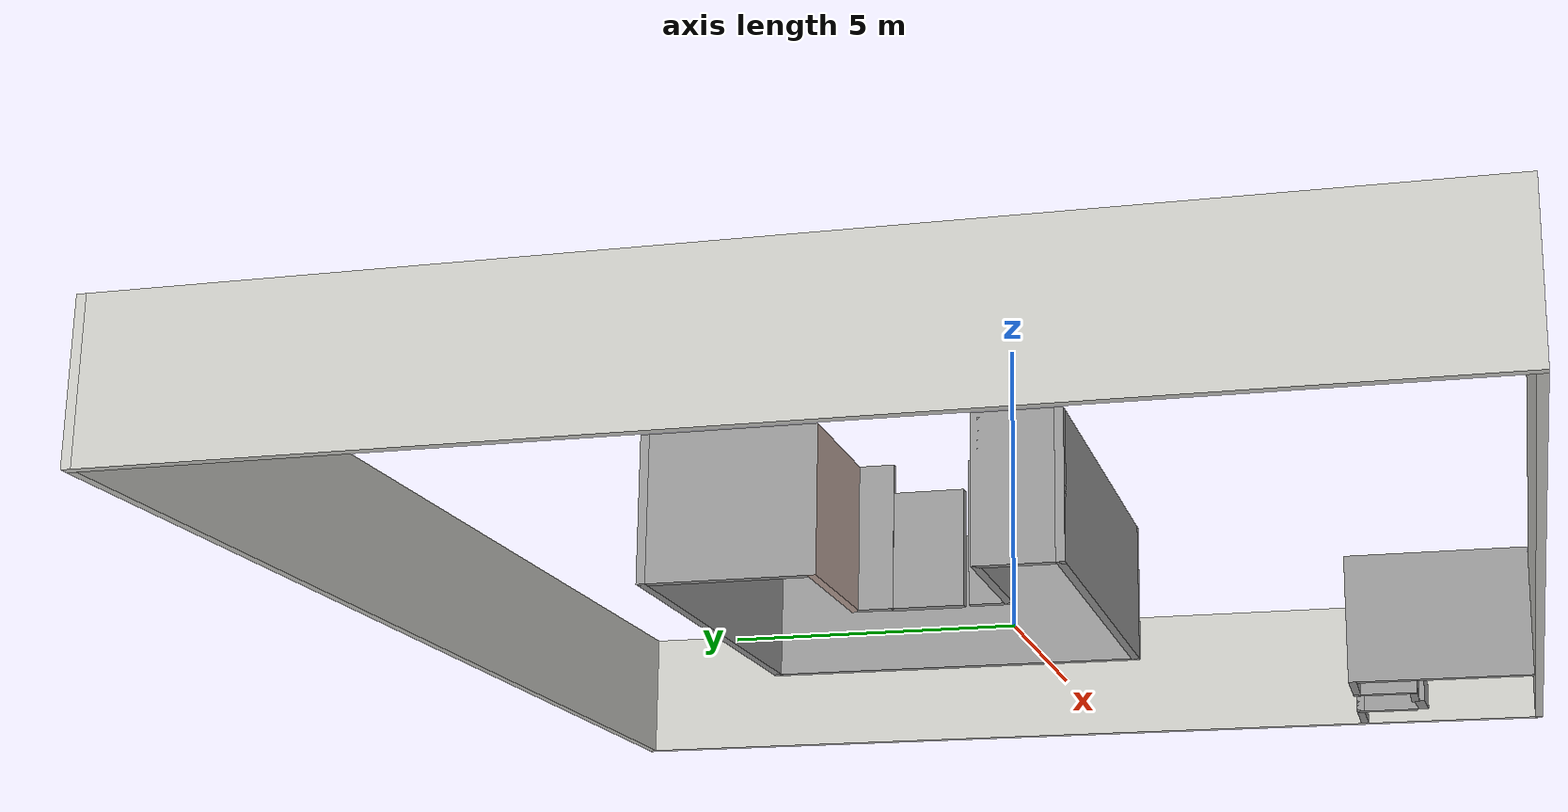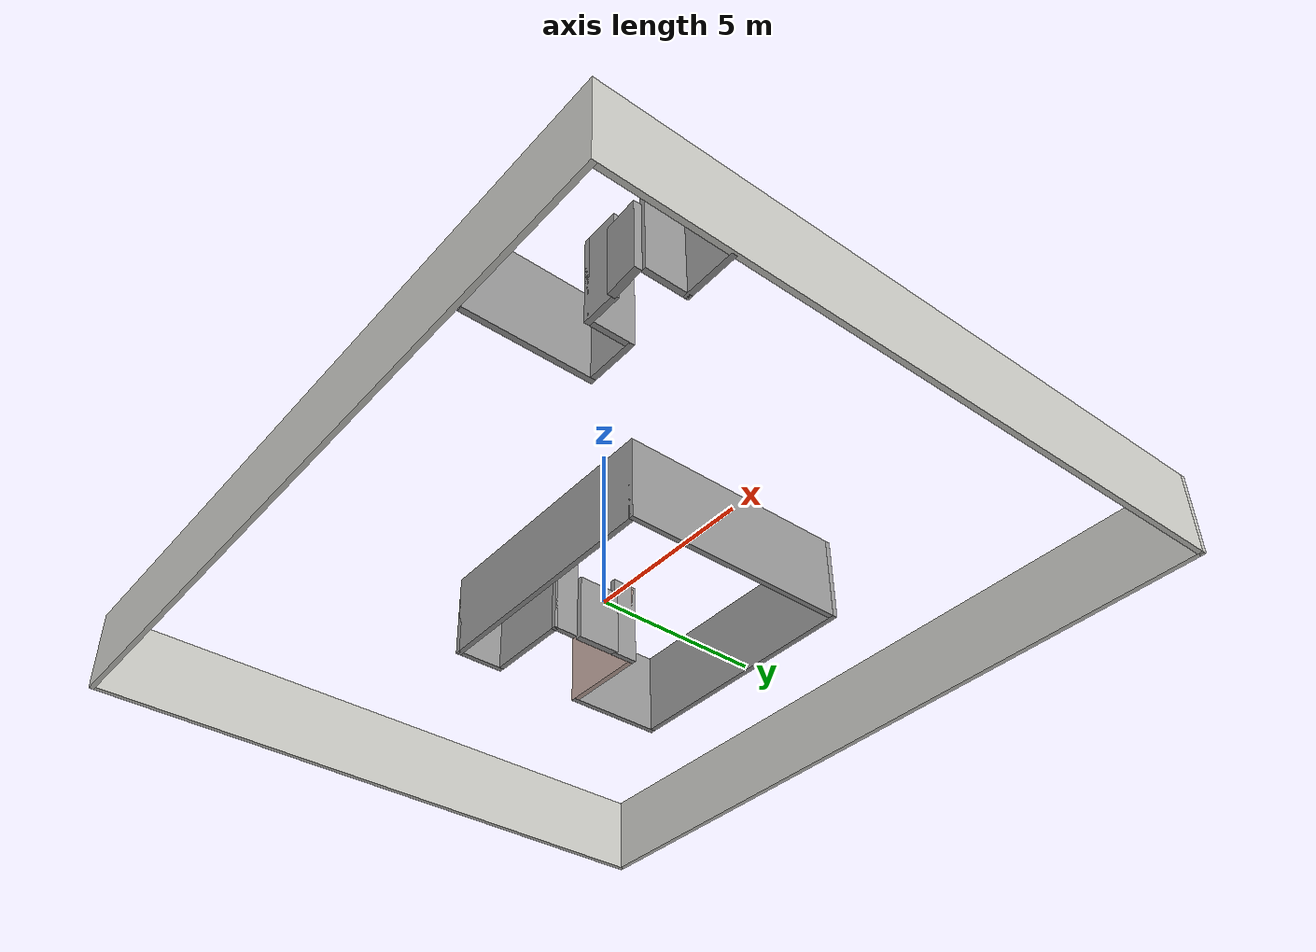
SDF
<?xml version='1.0'?>
<sdf version='1.6'>
  <model name='building'>
    <pose frame=''>-0.722 0.806 0 0 -0 0</pose>
    <link name='Door_0'>
      <collision name='Door_0_Collision'>
        <geometry>
          <box>
            <size>1.28749 0.2 2</size>
          </box>
        </geometry>
        <pose frame=''>0 0 1 0 -0 0</pose>
      </collision>
      <visual name='Door_0_Visual'>
        <pose frame=''>0 0 1 0 -0 0</pose>
        <geometry>
          <box>
            <size>1.28749 0.2 2</size>
          </box>
        </geometry>
        <material>
          <script>
            <uri>file://media/materials/scripts/gazebo.material</uri>
            <name>Gazebo/Grey</name>
          </script>
        </material>
      </visual>
      <pose frame=''>-1.03517 0.324293 0 0 0 -1.57581</pose>
    </link>
    <link name='Door_1'>
      <collision name='Door_1_Collision'>
        <geometry>
          <box>
            <size>0.932677 0.2 2</size>
          </box>
        </geometry>
        <pose frame=''>0 0 1 0 -0 0</pose>
      </collision>
      <visual name='Door_1_Visual'>
        <pose frame=''>0 0 1 0 -0 0</pose>
        <geometry>
          <box>
            <size>0.932677 0.2 2</size>
          </box>
        </geometry>
        <material>
          <script>
            <uri>file://media/materials/scripts/gazebo.material</uri>
            <name>Gazebo/Grey</name>
          </script>
        </material>
      </visual>
      <pose frame=''>9.75351 -7.35998 0 0 0 -0.048775</pose>
    </link>
    <link name='Wall_11'>
      <collision name='Wall_11_Collision'>
        <geometry>
          <box>
            <size>7.75 0.15 2.5</size>
          </box>
        </geometry>
        <pose frame=''>0 0 1.25 0 -0 0</pose>
      </collision>
      <visual name='Wall_11_Visual'>
        <pose frame=''>0 0 1.25 0 -0 0</pose>
        <geometry>
          <box>
            <size>7.75 0.15 2.5</size>
          </box>
        </geometry>
        <material>
          <script>
            <uri>file://media/materials/scripts/gazebo.material</uri>
            <name>Gazebo/Grey</name>
          </script>
          <ambient>1 1 1 1</ambient>
        </material>
        <meta>
          <layer>0</layer>
        </meta>
      </visual>
      <pose frame=''>0.135 -2.427 0 0 -0 0</pose>
    </link>
    <link name='Wall_12'>
      <collision name='Wall_12_Collision'>
        <geometry>
          <box>
            <size>7 0.15 2.5</size>
          </box>
        </geometry>
        <pose frame=''>0 0 1.25 0 -0 0</pose>
      </collision>
      <visual name='Wall_12_Visual'>
        <pose frame=''>0 0 1.25 0 -0 0</pose>
        <geometry>
          <box>
            <size>7 0.15 2.5</size>
          </box>
        </geometry>
        <material>
          <script>
            <uri>file://media/materials/scripts/gazebo.material</uri>
            <name>Gazebo/Grey</name>
          </script>
          <ambient>1 1 1 1</ambient>
        </material>
        <meta>
          <layer>0</layer>
        </meta>
      </visual>
      <pose frame=''>3.935 0.998 0 0 -0 1.5708</pose>
    </link>
    <link name='Wall_13'>
      <collision name='Wall_13_Collision'>
        <geometry>
          <box>
            <size>7.75 0.15 2.5</size>
          </box>
        </geometry>
        <pose frame=''>0 0 1.25 0 -0 0</pose>
      </collision>
      <visual name='Wall_13_Visual'>
        <pose frame=''>0 0 1.25 0 -0 0</pose>
        <geometry>
          <box>
            <size>7.75 0.15 2.5</size>
          </box>
        </geometry>
        <material>
          <script>
            <uri>file://media/materials/scripts/gazebo.material</uri>
            <name>Gazebo/Grey</name>
          </script>
          <ambient>1 1 1 1</ambient>
        </material>
        <meta>
          <layer>0</layer>
        </meta>
      </visual>
      <pose frame=''>0.135 4.423 0 0 -0 3.14159</pose>
    </link>
    <link name='Wall_15'>
      <collision name='Wall_15_Collision'>
        <geometry>
          <box>
            <size>3 0.15 2.5</size>
          </box>
        </geometry>
        <pose frame=''>0 0 1.25 0 -0 0</pose>
      </collision>
      <visual name='Wall_15_Visual'>
        <pose frame=''>0 0 1.25 0 -0 0</pose>
        <geometry>
          <box>
            <size>3 0.15 2.5</size>
          </box>
        </geometry>
        <material>
          <script>
            <uri>file://media/materials/scripts/gazebo.material</uri>
            <name>Gazebo/Grey</name>
          </script>
          <ambient>1 1 1 1</ambient>
        </material>
        <meta>
          <layer>0</layer>
        </meta>
      </visual>
      <pose frame=''>-3.665 2.998 0 0 0 -1.5708</pose>
    </link>
    <link name='Wall_16'>
      <collision name='Wall_16_Collision'>
        <geometry>
          <box>
            <size>2.75 0.15 2.5</size>
          </box>
        </geometry>
        <pose frame=''>0 0 1.25 0 -0 0</pose>
      </collision>
      <visual name='Wall_16_Visual'>
        <pose frame=''>0 0 1.25 0 -0 0</pose>
        <geometry>
          <box>
            <size>2.75 0.15 2.5</size>
          </box>
        </geometry>
        <material>
          <script>
            <uri>file://media/materials/scripts/gazebo.material</uri>
            <name>Gazebo/Grey</name>
          </script>
          <ambient>0.760784 0.662745 0.627451 1</ambient>
        </material>
        <meta>
          <layer>0</layer>
        </meta>
      </visual>
      <pose frame=''>-2.365 1.573 0 0 -0 0</pose>
    </link>
    <link name='Wall_17'>
      <collision name='Wall_17_Collision'>
        <geometry>
          <box>
            <size>0.75 0.15 2.5</size>
          </box>
        </geometry>
        <pose frame=''>0 0 1.25 0 -0 0</pose>
      </collision>
      <visual name='Wall_17_Visual'>
        <pose frame=''>0 0 1.25 0 -0 0</pose>
        <geometry>
          <box>
            <size>0.75 0.15 2.5</size>
          </box>
        </geometry>
        <material>
          <script>
            <uri>file://media/materials/scripts/gazebo.material</uri>
            <name>Gazebo/Grey</name>
          </script>
          <ambient>1 1 1 1</ambient>
        </material>
        <meta>
          <layer>0</layer>
        </meta>
      </visual>
      <pose frame=''>-1.065 1.273 0 0 0 -1.5708</pose>
    </link>
    <link name='Wall_19'>
      <collision name='Wall_19_Collision'>
        <geometry>
          <box>
            <size>1.5 0.15 2.5</size>
          </box>
        </geometry>
        <pose frame=''>0 0 1.25 0 -0 0</pose>
      </collision>
      <visual name='Wall_19_Visual'>
        <pose frame=''>0 0 1.25 0 -0 0</pose>
        <geometry>
          <box>
            <size>1.5 0.15 2.5</size>
          </box>
        </geometry>
        <material>
          <script>
            <uri>file://media/materials/scripts/gazebo.material</uri>
            <name>Gazebo/Grey</name>
          </script>
          <ambient>1 1 1 1</ambient>
        </material>
        <meta>
          <layer>0</layer>
        </meta>
      </visual>
      <pose frame=''>-3.665 -1.752 0 0 -0 1.5708</pose>
    </link>
    <link name='Wall_20'>
      <collision name='Wall_20_Collision'>
        <geometry>
          <box>
            <size>2.75 0.15 2.5</size>
          </box>
        </geometry>
        <pose frame=''>0 0 1.25 0 -0 0</pose>
      </collision>
      <visual name='Wall_20_Visual'>
        <pose frame=''>0 0 1.25 0 -0 0</pose>
        <geometry>
          <box>
            <size>2.75 0.15 2.5</size>
          </box>
        </geometry>
        <material>
          <script>
            <uri>file://media/materials/scripts/gazebo.material</uri>
            <name>Gazebo/Grey</name>
          </script>
          <ambient>1 1 1 1</ambient>
        </material>
        <meta>
          <layer>0</layer>
        </meta>
      </visual>
      <pose frame=''>-2.365 -1.077 0 0 -0 0</pose>
    </link>
    <link name='Wall_21'>
      <collision name='Wall_21_Collision'>
        <geometry>
          <box>
            <size>0.75 0.15 2.5</size>
          </box>
        </geometry>
        <pose frame=''>0 0 1.25 0 -0 0</pose>
      </collision>
      <visual name='Wall_21_Visual'>
        <pose frame=''>0 0 1.25 0 -0 0</pose>
        <geometry>
          <box>
            <size>0.75 0.15 2.5</size>
          </box>
        </geometry>
        <material>
          <script>
            <uri>file://media/materials/scripts/gazebo.material</uri>
            <name>Gazebo/Grey</name>
          </script>
          <ambient>1 1 1 1</ambient>
        </material>
        <meta>
          <layer>0</layer>
        </meta>
      </visual>
      <pose frame=''>-1.06498 -0.777074 0 0 -0 1.57073</pose>
    </link>
    <link name='Wall_4'>
      <collision name='Wall_4_Collision'>
        <geometry>
          <box>
            <size>19.5 0.15 2.5</size>
          </box>
        </geometry>
        <pose frame=''>0 0 1.25 0 -0 0</pose>
      </collision>
      <visual name='Wall_4_Visual'>
        <pose frame=''>0 0 1.25 0 -0 0</pose>
        <geometry>
          <box>
            <size>19.5 0.15 2.5</size>
          </box>
        </geometry>
        <material>
          <script>
            <uri>file://media/materials/scripts/gazebo.material</uri>
            <name>Gazebo/CeilingTiled</name>
          </script>
          <ambient>0.435294 0.796078 0.67451 1</ambient>
        </material>
        <meta>
          <layer>0</layer>
        </meta>
      </visual>
      <pose frame=''>-11.675 0 0 0 0 -1.5708</pose>
    </link>
    <link name='Wall_5'>
      <collision name='Wall_5_Collision'>
        <geometry>
          <box>
            <size>23.5 0.15 2.5</size>
          </box>
        </geometry>
        <pose frame=''>0 0 1.25 0 -0 0</pose>
      </collision>
      <visual name='Wall_5_Visual'>
        <pose frame=''>0 0 1.25 0 -0 0</pose>
        <geometry>
          <box>
            <size>23.5 0.15 2.5</size>
          </box>
        </geometry>
        <material>
          <script>
            <uri>file://media/materials/scripts/gazebo.material</uri>
            <name>Gazebo/CeilingTiled</name>
          </script>
          <ambient>0.435294 0.796078 0.67451 1</ambient>
        </material>
        <meta>
          <layer>0</layer>
        </meta>
      </visual>
      <pose frame=''>0 -9.675 0 0 -0 0</pose>
    </link>
    <link name='Wall_51'>
      <collision name='Wall_51_Collision'>
        <geometry>
          <box>
            <size>3.5 0.15 2.5</size>
          </box>
        </geometry>
        <pose frame=''>0 0 1.25 0 -0 0</pose>
      </collision>
      <visual name='Wall_51_Visual'>
        <pose frame=''>0 0 1.25 0 -0 0</pose>
        <geometry>
          <box>
            <size>3.5 0.15 2.5</size>
          </box>
        </geometry>
        <material>
          <script>
            <uri>file://media/materials/scripts/gazebo.material</uri>
            <name>Gazebo/Grey</name>
          </script>
          <ambient>1 1 1 1</ambient>
        </material>
        <meta>
          <layer>0</layer>
        </meta>
      </visual>
      <pose frame=''>7.08944 -7.83193 0 0 -0 1.5708</pose>
    </link>
    <link name='Wall_52'>
      <collision name='Wall_52_Collision'>
        <geometry>
          <box>
            <size>1.5 0.15 2.5</size>
          </box>
        </geometry>
        <pose frame=''>0 0 1.25 0 -0 0</pose>
      </collision>
      <visual name='Wall_52_Visual'>
        <pose frame=''>0 0 1.25 0 -0 0</pose>
        <geometry>
          <box>
            <size>1.5 0.15 2.5</size>
          </box>
        </geometry>
        <material>
          <script>
            <uri>file://media/materials/scripts/gazebo.material</uri>
            <name>Gazebo/Grey</name>
          </script>
          <ambient>1 1 1 1</ambient>
        </material>
        <meta>
          <layer>0</layer>
        </meta>
      </visual>
      <pose frame=''>7.76444 -6.15693 0 0 -0 0</pose>
    </link>
    <link name='Wall_53'>
      <collision name='Wall_53_Collision'>
        <geometry>
          <box>
            <size>1.25 0.15 2.5</size>
          </box>
        </geometry>
        <pose frame=''>0 0 1.25 0 -0 0</pose>
      </collision>
      <visual name='Wall_53_Visual'>
        <pose frame=''>0 0 1.25 0 -0 0</pose>
        <geometry>
          <box>
            <size>1.25 0.15 2.5</size>
          </box>
        </geometry>
        <material>
          <script>
            <uri>file://media/materials/scripts/gazebo.material</uri>
            <name>Gazebo/Grey</name>
          </script>
          <ambient>1 1 1 1</ambient>
        </material>
        <meta>
          <layer>0</layer>
        </meta>
      </visual>
      <pose frame=''>8.43944 -6.70693 0 0 0 -1.5708</pose>
    </link>
    <link name='Wall_54'>
      <collision name='Wall_54_Collision'>
        <geometry>
          <box>
            <size>1 0.15 2.5</size>
          </box>
        </geometry>
        <pose frame=''>0 0 1.25 0 -0 0</pose>
      </collision>
      <visual name='Wall_54_Visual'>
        <pose frame=''>0 0 1.25 0 -0 0</pose>
        <geometry>
          <box>
            <size>1 0.15 2.5</size>
          </box>
        </geometry>
        <material>
          <script>
            <uri>file://media/materials/scripts/gazebo.material</uri>
            <name>Gazebo/Grey</name>
          </script>
          <ambient>1 1 1 1</ambient>
        </material>
        <meta>
          <layer>0</layer>
        </meta>
      </visual>
      <pose frame=''>8.86444 -7.25693 0 0 -0 0</pose>
    </link>
    <link name='Wall_56'>
      <collision name='Wall_56_Collision'>
        <geometry>
          <box>
            <size>1.5 0.15 2.5</size>
          </box>
        </geometry>
        <pose frame=''>0 0 1.25 0 -0 0</pose>
      </collision>
      <visual name='Wall_56_Visual'>
        <pose frame=''>0 0 1.25 0 -0 0</pose>
        <geometry>
          <box>
            <size>1.5 0.15 2.5</size>
          </box>
        </geometry>
        <material>
          <script>
            <uri>file://media/materials/scripts/gazebo.material</uri>
            <name>Gazebo/Grey</name>
          </script>
          <ambient>1 1 1 1</ambient>
        </material>
        <meta>
          <layer>0</layer>
        </meta>
      </visual>
      <pose frame=''>10.9273 -6.11068 0 0 -0 3.14159</pose>
    </link>
    <link name='Wall_57'>
      <collision name='Wall_57_Collision'>
        <geometry>
          <box>
            <size>1.25 0.15 2.5</size>
          </box>
        </geometry>
        <pose frame=''>0 0 1.25 0 -0 0</pose>
      </collision>
      <visual name='Wall_57_Visual'>
        <pose frame=''>0 0 1.25 0 -0 0</pose>
        <geometry>
          <box>
            <size>1.25 0.15 2.5</size>
          </box>
        </geometry>
        <material>
          <script>
            <uri>file://media/materials/scripts/gazebo.material</uri>
            <name>Gazebo/Grey</name>
          </script>
          <ambient>1 1 1 1</ambient>
        </material>
        <meta>
          <layer>0</layer>
        </meta>
      </visual>
      <pose frame=''>10.2523 -6.66068 0 0 0 -1.5708</pose>
    </link>
    <link name='Wall_6'>
      <collision name='Wall_6_Collision'>
        <geometry>
          <box>
            <size>19.5 0.15 2.5</size>
          </box>
        </geometry>
        <pose frame=''>0 0 1.25 0 -0 0</pose>
      </collision>
      <visual name='Wall_6_Visual'>
        <pose frame=''>0 0 1.25 0 -0 0</pose>
        <geometry>
          <box>
            <size>19.5 0.15 2.5</size>
          </box>
        </geometry>
        <material>
          <script>
            <uri>file://media/materials/scripts/gazebo.material</uri>
            <name>Gazebo/CeilingTiled</name>
          </script>
          <ambient>0.435294 0.796078 0.67451 1</ambient>
        </material>
        <meta>
          <layer>0</layer>
        </meta>
      </visual>
      <pose frame=''>11.675 0 0 0 -0 1.5708</pose>
    </link>
    <link name='Wall_7'>
      <collision name='Wall_7_Collision'>
        <geometry>
          <box>
            <size>23.5 0.15 2.5</size>
          </box>
        </geometry>
        <pose frame=''>0 0 1.25 0 -0 0</pose>
      </collision>
      <visual name='Wall_7_Visual'>
        <pose frame=''>0 0 1.25 0 -0 0</pose>
        <geometry>
          <box>
            <size>23.5 0.15 2.5</size>
          </box>
        </geometry>
        <material>
          <script>
            <uri>file://media/materials/scripts/gazebo.material</uri>
            <name>Gazebo/CeilingTiled</name>
          </script>
          <ambient>0.435294 0.796078 0.67451 1</ambient>
        </material>
        <meta>
          <layer>0</layer>
        </meta>
      </visual>
      <pose frame=''>0 9.675 0 0 -0 3.14159</pose>
    </link>
    <static>1</static>
  </model>
</sdf>
